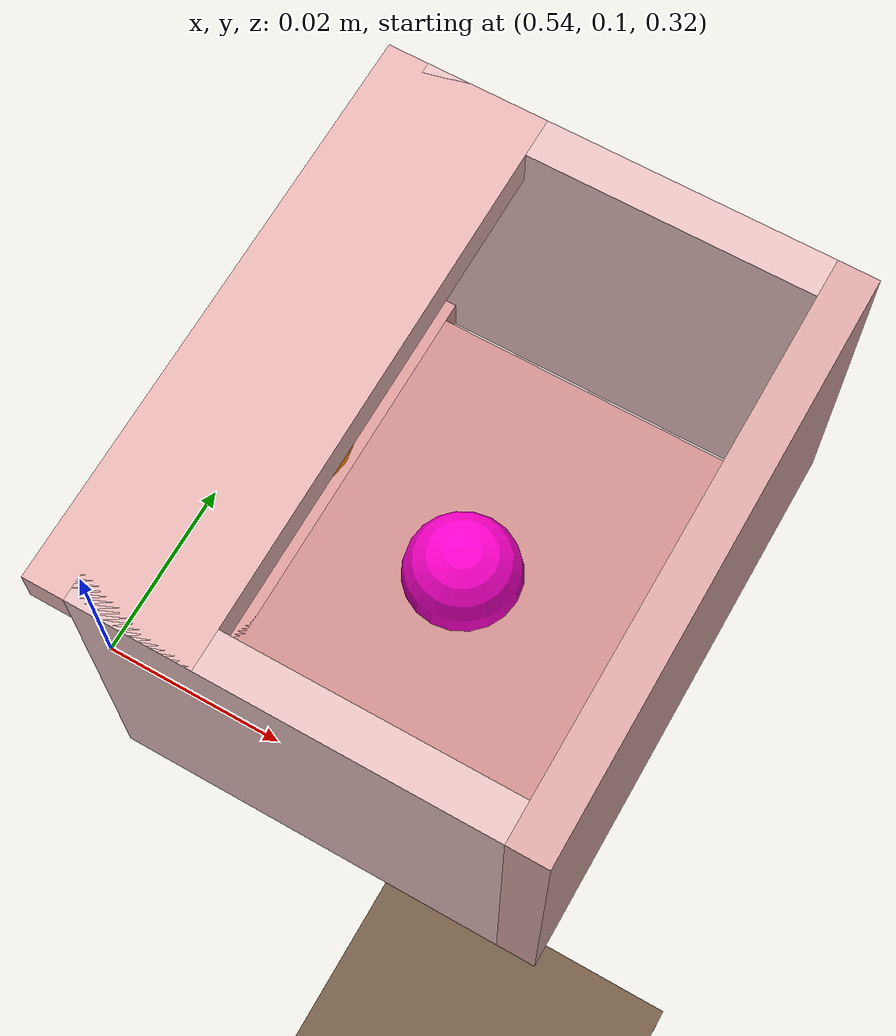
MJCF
<mujoco model="feeding beans native v1">
  <option timestep="0.001" gravity="0 0 -9.81" integrator="implicitfast" solver="Newton" iterations="50" cone="elliptic" impratio="10" />
  <default>
    <default class="task">
      <geom friction="0.5 0.005 0.0001" solref="0.005 1" solimp="0.9 0.95 0.001" condim="3" group="0" />
    </default>
    <default class="scene_motor">
      <motor ctrllimited="true" forcelimited="true" gear="1" />
    </default>
  </default>
  <visual>
    <headlight diffuse="0.6 0.6 0.6" ambient="0.3 0.3 0.3" specular="0 0 0" />
    <global azimuth="140" elevation="-25" />
  </visual>
  <asset>
    <texture type="skybox" builtin="gradient" rgb1="0.3 0.5 0.7" rgb2="0 0 0" width="512" height="3072" />
    <texture type="2d" name="groundplane" builtin="checker" mark="edge" rgb1="0.2 0.3 0.4" rgb2="0.1 0.2 0.3" markrgb="0.8 0.8 0.8" width="300" height="300" />
    <material name="groundplane" texture="groundplane" texuniform="true" texrepeat="5 5" reflectance="0.2" />
  </asset>
  <worldbody>
    <light pos="0 0 1.5" dir="0 0 -1" directional="true" />
    <camera name="overview" pos="1.35 -1.05 0.85" xyaxes="0.62 0.78 0 -0.28 0.22 0.93" />
    <geom name="floor" type="plane" pos="0 0 -0.25" size="0 0 0.05" material="groundplane" class="task" />
    <geom name="table" type="box" pos="0.55 -0.02 -0.04" size="0.38 0.48 0.02" class="task" rgba="0.45 0.36 0.28 1" />
    <body name="head" pos="0.55 0.12 0.35">
      <joint name="head_x" type="slide" axis="1 0 0" range="-0.02 0.02" damping="5" armature="0.01" />
      <joint name="head_y" type="slide" axis="0 1 0" range="-0.02 0.02" damping="5" armature="0.01" />
      <joint name="head_z" type="slide" axis="0 0 1" range="-0.02 0.02" damping="5" armature="0.01" />
      <joint name="head_yaw" type="hinge" axis="0 0 1" range="-0.15 0.15" damping="0.4" armature="0.01" />
      <inertial mass="1" pos="0.02 0 0" diaginertia="0.02 0.02 0.02" />
      <geom name="mouth_upper" type="box" pos="0.004 0 0.017" size="0.008 0.029 0.002" class="task" rgba="0.9 0.7 0.7 1" />
      <geom name="mouth_left" type="box" pos="0.02 0.027 0" size="0.02 0.002 0.019" class="task" rgba="0.9 0.75 0.75 1" />
      <geom name="mouth_right" type="box" pos="0.02 -0.027 0" size="0.02 0.002 0.019" class="task" rgba="0.9 0.75 0.75 1" />
      <geom name="mouth_back" type="box" pos="0.042 0 0" size="0.002 0.029 0.019" class="task" rgba="0.85 0.65 0.65 1" />
      <site name="mouth_entry" pos="0 0 0" size="0.008" rgba="1 0.5 0 1" />
      <body name="jaw" pos="0 0 -0.015">
        <joint name="jaw" type="hinge" axis="0 1 0" range="-0.05 0.45" damping="0.05" armature="0.001" />
        <inertial mass="0.1" pos="0.02 0 -0.004" diaginertia="4e-4 4e-4 4e-4" />
        <geom name="jaw_floor" type="box" pos="0.02 0 -0.002" size="0.02 0.023 0.002" class="task" rgba="0.8 0.55 0.55 1" />
        <geom name="jaw_lip" type="box" pos="0.001 0 -0.002" size="0.004 0.025 0.002" class="task" rgba="0.85 0.6 0.6 1" />
        <site name="mouth_receiver" pos="0.02 0 0" size="0.006" rgba="1 0 0.8 1" />
      </body>
    </body>
  </worldbody>
  <actuator>
    <motor class="scene_motor" name="head_fx" joint="head_x" ctrlrange="-30 30" forcerange="-30 30" />
    <motor class="scene_motor" name="head_fy" joint="head_y" ctrlrange="-30 30" forcerange="-30 30" />
    <motor class="scene_motor" name="head_fz" joint="head_z" ctrlrange="-30 30" forcerange="-30 30" />
    <motor class="scene_motor" name="head_tau_yaw" joint="head_yaw" ctrlrange="-2 2" forcerange="-2 2" />
    <motor class="scene_motor" name="jaw_tau" joint="jaw" ctrlrange="-0.4 0.4" forcerange="-0.4 0.4" />
  </actuator>
  <contact>
    <exclude body1="head" body2="jaw" />
  </contact>
</mujoco>
